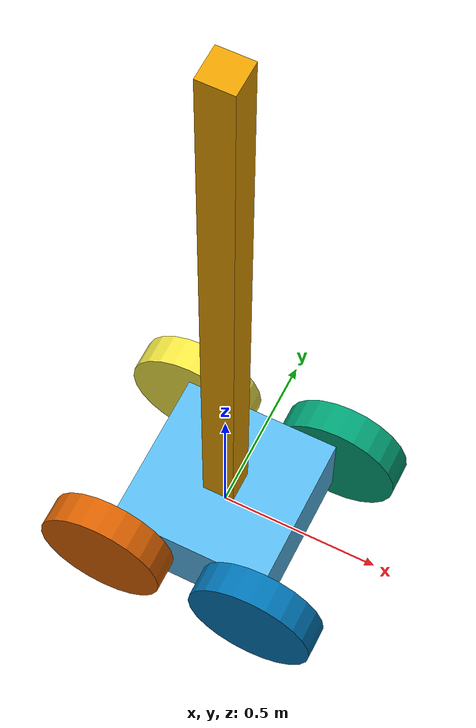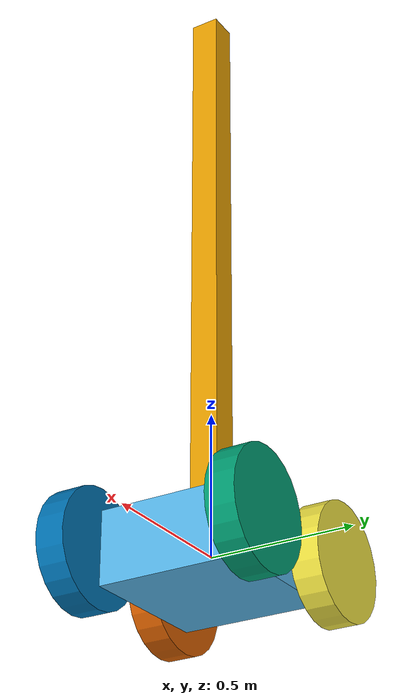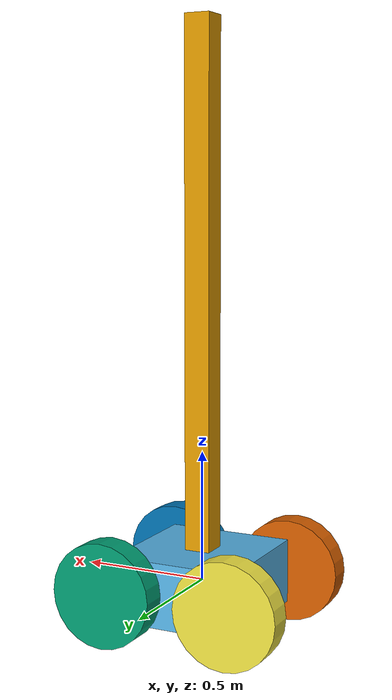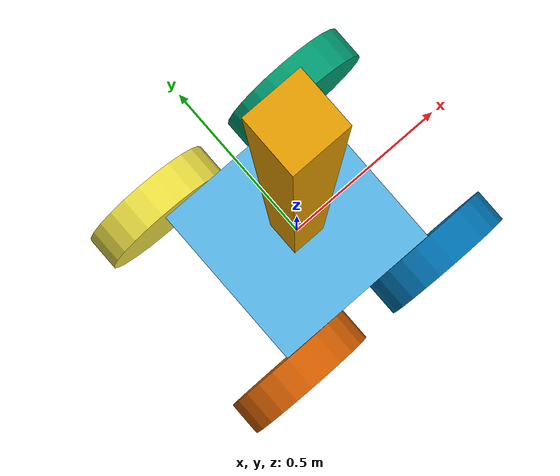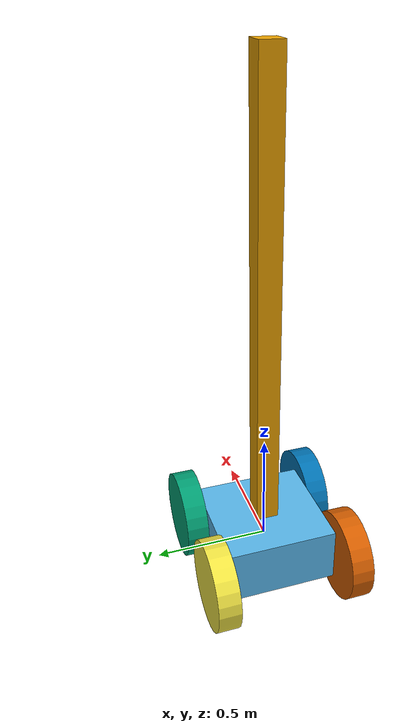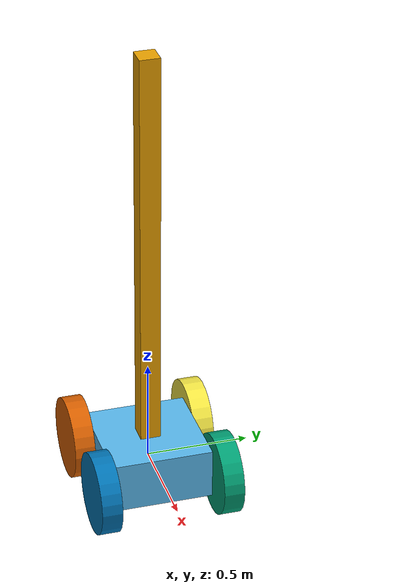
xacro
<?xml version="1.0"?>
<!-- Revolute-Revolute Manipulator -->
<robot name="rrbot" xmlns:xacro="http://www.ros.org/wiki/xacro">

  <!-- Constants for robot dimensions -->
  <xacro:property name="width" value="0.1" />   <!-- Beams are square in length and width -->
  <xacro:property name="height1" value="2" />   <!-- Link 1 -->
  <xacro:property name="height2" value="1" />   <!-- Link 2 -->
  <xacro:property name="height3" value="1" />   <!-- Link 3 -->
  <xacro:property name="axle_offset" value="0.05" /> <!-- Space between joint and end of beam -->
  <xacro:property name="damp" value="0.7" />    <!-- damping coefficient -->

<!-- Base Link -->
  <link name="base_link">
    <visual>
      <origin xyz="0 0 ${height1/2}" rpy="0 0 0"/>
      <geometry>
	<box size="${width} ${width} ${height1}"/>
      </geometry>
    </visual>

  </link>

  <!-- youbotbase -->
  <link name="youbotbase">
    <visual>
      <origin xyz="0 0 0" rpy="0 0 0" />
      <geometry>
          <box size="0.5 0.5 0.25"/>
      </geometry>
    </visual>
  </link>

   <joint name="joint_youbotbase_baselink" type="revolute">
    <parent link="youbotbase"/>
    <child link="base_link"/>
    <origin xyz="0 0 0.125" rpy="0 0 0"/>
    <axis xyz="0 1 0"/>
    <dynamics damping="0.7"/>
    <limit effort="100.0" velocity="0.5" lower="-3.14" upper="3.14" />
  </joint>

 <!-- Right Wheel front-->
  <link name="right_wheel_front">
    <visual>
      <origin xyz="0 0 0" rpy="1.570795 0 0" />
      <geometry>
          <cylinder length="0.1" radius="0.2" />
      </geometry>
    </visual>
  </link>
  <joint name="joint_right_wheel_front" type="continuous">
    <parent link="youbotbase"/>
    <child link="right_wheel_front"/>
    <origin xyz="0.25 0.30 0" rpy="0 0 0" />
    <axis xyz="0 1 0" />
  </joint>

  <!-- Right Wheel back-->
  <link name="right_wheel_back">
    <visual>
      <origin xyz="0 0 0" rpy="1.570795 0 0" />
      <geometry>
          <cylinder length="0.1" radius="0.2" />
      </geometry>
    </visual>
  </link>
  <joint name="joint_right_wheel_back" type="continuous">
    <parent link="youbotbase"/>
    <child link="right_wheel_back"/>
    <origin xyz="-0.25 0.30 0" rpy="0 0 0" />
    <axis xyz="0 1 0" />
  </joint>

  <!-- Left Wheel front-->
  <link name="left_wheel_front">
    <visual>
      <origin xyz="0 0 0" rpy="1.570795 0 0" />
      <geometry>
          <cylinder length="0.1" radius="0.2" />
      </geometry>
    </visual>
  </link>
  <joint name="joint_left_wheel_front" type="continuous">
    <parent link="youbotbase"/>
    <child link="left_wheel_front"/>
    <origin xyz="0.25 -0.30 0" rpy="0 0 0" />
    <axis xyz="0 1 0" />
  </joint>

   <!-- Left Wheel back -->
  <link name="left_wheel_back">
    <visual>
      <origin xyz="0 0 0" rpy="1.570795 0 0" />
      <geometry>
          <cylinder length="0.1" radius="0.2" />
      </geometry>
    </visual>
  </link>
  <joint name="joint_left_wheel_back" type="continuous">
    <parent link="youbotbase"/>
    <child link="left_wheel_back"/>
    <origin xyz="-0.25 -0.30 0" rpy="0 0 0" />
    <axis xyz="0 1 0" />
  </joint>

</robot>
